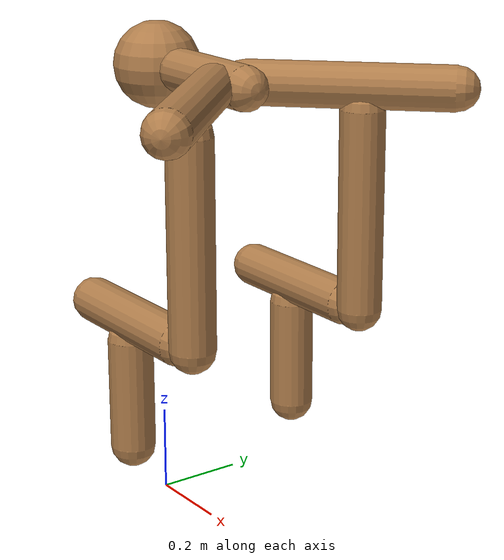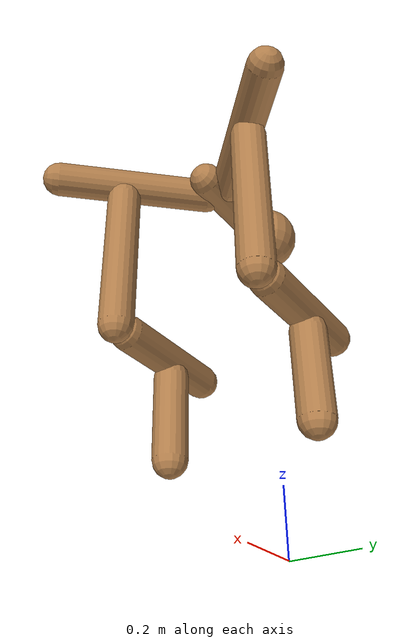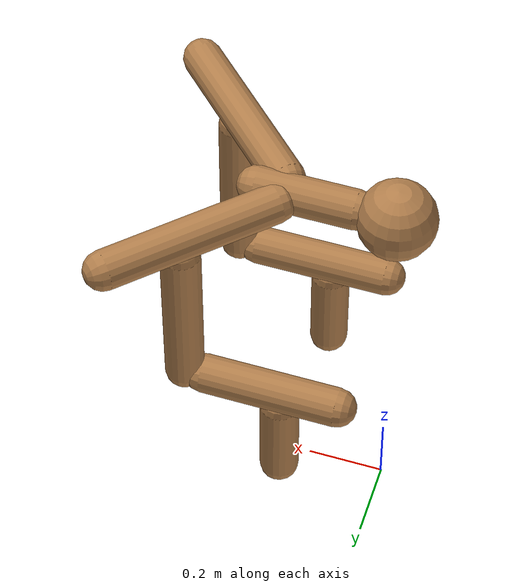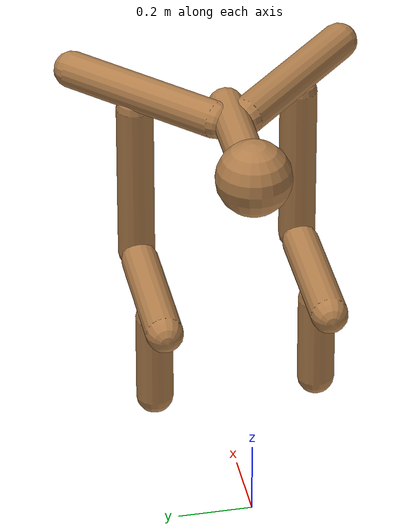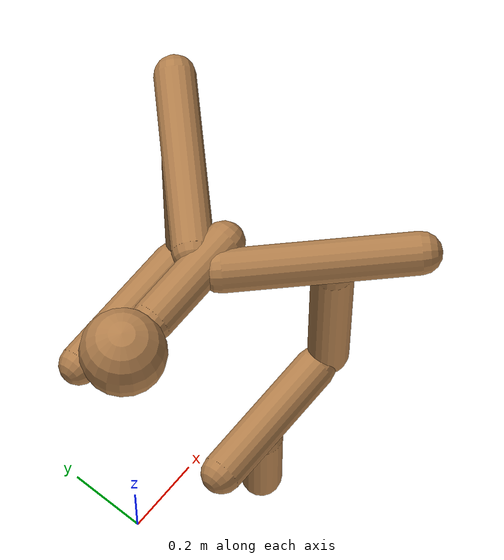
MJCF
<?xml version='1.0' encoding='UTF-8'?>
<!-- Universal Animal Template: unimal -->
<mujoco model="unimal">
  <compiler angle="degree"/>
  <size njmax="2000" nconmax="500"/>
  <option timestep=".005">
    <flag filterparent="disable"/>
  </option>
  <!-- Common defaults to make search space tractable -->
  <default>
    <!-- Define motor defaults -->
    <motor ctrlrange="-1 1" ctrllimited="true"/>
    <!-- Define joint defaults -->
    <default class="normal_joint">
      <joint type="hinge" damping="1" stiffness="1" armature="1" limited="true" range="-120 120" solimplimit="0 0.99 0.01"/>
    </default>
    <default class="walker_joint">
      <joint type="hinge" damping="0.2" stiffness="1" armature=".01" limited="true" range="-120 120" solimplimit="0 0.99 0.01"/>
    </default>
    <default class="stiff_joint">
      <joint type="hinge" damping="5" stiffness="10" armature=".01" limited="true" solimplimit="0 0.99 0.01"/>
    </default>
    <default class="free">
      <joint limited="false" damping="0" armature="0" stiffness="0"/>
    </default>
    <default class="growth_site">
      <site size="1e-6 1e-6 1e-6"/>
    </default>
    <default class="torso_growth_site">
      <site size="1e-6 1e-6 1e-6"/>
    </default>
    <default class="mirror_growth_site">
      <site size="1e-6 1e-6 1e-6"/>
    </default>
    <default class="btm_pos_site">
      <site size="1e-6 1e-6 1e-6"/>
    </default>
    <default class="box_face_site">
      <site size="1e-6 1e-6 1e-6"/>
    </default>
    <default class="imu_vel">
      <site type="box" size="0.05" rgba="1 0 0 0"/>
    </default>
    <default class="touch_site">
      <site group="3" rgba="0 0 1 .3"/>
    </default>
    <default class="food_site">
      <site material="food" size="0.15"/>
    </default>
    <!-- Define geom defaults -->
    <geom type="capsule" condim="3" friction="0.7 0.1 0.1" material="self"/>
  </default>
  <worldbody>
    <light diffuse="1 1 1" directional="true" exponent="1" pos="0 0 8" specular="0.1 0.1 0.1" dir="0 0 -1"/>
    <!-- Programatically generated xml goes here -->
    <body name="torso/0" pos="0 0 1.05">
      <joint name="root" type="free" class="free"/>
      <site name="root" class="imu_vel"/>
      <geom name="torso/0" type="sphere" size="0.1" condim="3" density="500"/>
      <camera name="side" pos="0 -7 2" xyaxes="1 0 0 0 1 2" mode="trackcom"/>
      <site name="torso/0" class="growth_site" pos="0 0 0"/>
      <site name="torso/btm_pos/0" class="btm_pos_site" pos="0 0 -0.1"/>
      <site name="torso/touch/0" class="touch_site" size="0.11"/>
      <site name="torso/horizontal_y/0" class="torso_growth_site" pos="-0.1 0 0"/>
      <body name="limb/18" pos="0.1 0.0 0.0">
        <joint name="limbx/18" type="hinge" class="normal_joint" range="-60 30" pos="-0.05 0.0 0.0" axis="0.0 0.0 1.0"/>
        <geom name="limb/18" type="capsule" fromto="0.0 0.0 0.0 0.25 0.0 0.0" size="0.05" density="500"/>
        <site name="limb/mid/18" class="growth_site" pos="0.15 0.0 0.0"/>
        <site name="limb/btm/18" class="growth_site" pos="0.25 0.0 0.0"/>
        <site name="limb/btm_pos/18" class="btm_pos_site" pos="0.25 0.0 0.0"/>
        <site name="limb/touch/18" class="touch_site" size="0.060000000000000005" fromto="0.0 0.0 0.0 0.25 0.0 0.0" type="capsule"/>
        <body name="limb/19" pos="0.19 0.04 0.0">
          <joint name="limbx/19" type="hinge" class="normal_joint" range="-60 0" pos="-0.04 -0.04 0.0" axis="0.5 -0.5 0.7071"/>
          <geom name="limb/19" type="capsule" fromto="0.0 0.0 0.0 0.32 0.32 0.0" size="0.05" density="500"/>
          <site name="limb/mid/19" class="mirror_growth_site" pos="0.18 0.18 0.0"/>
          <site name="limb/btm/19" class="mirror_growth_site" pos="0.32 0.32 0.0"/>
          <site name="limb/btm_pos/19" class="btm_pos_site" pos="0.32 0.32 0.0"/>
          <site name="limb/touch/19" class="touch_site" size="0.060000000000000005" fromto="0.0 0.0 0.0 0.32 0.32 0.0" type="capsule"/>
          <body name="limb/25" pos="0.18 0.18 -0.05">
            <joint name="limbx/25" type="hinge" class="normal_joint" range="0 60" pos="0.0 0.0 0.05" axis="1.0 0.0 0.0"/>
            <joint name="limby/25" type="hinge" class="normal_joint" range="-45 45" pos="0.0 0.0 0.05" axis="0.0 1.0 0.0"/>
            <geom name="limb/25" type="capsule" fromto="0.0 0.0 0.0 0.0 0.0 -0.45" size="0.05" density="500"/>
            <site name="limb/mid/25" class="mirror_growth_site" pos="0.0 0.0 -0.25"/>
            <site name="limb/btm/25" class="mirror_growth_site" pos="0.0 0.0 -0.45"/>
            <site name="limb/btm_pos/25" class="btm_pos_site" pos="0.0 0.0 -0.45"/>
            <site name="limb/touch/25" class="touch_site" size="0.060000000000000005" fromto="0.0 0.0 0.0 0.0 0.0 -0.45" type="capsule"/>
            <body name="limb/31" pos="-0.05 0.0 -0.45">
              <joint name="limbx/31" type="hinge" class="normal_joint" range="0 60" pos="0.05 0.0 0.0" axis="0.0 0.0 -1.0"/>
              <geom name="limb/31" type="capsule" fromto="0.0 0.0 0.0 -0.35 0.0 0.0" size="0.05" density="500"/>
              <site name="limb/mid/31" class="mirror_growth_site" pos="-0.2 0.0 0.0"/>
              <site name="limb/btm/31" class="mirror_growth_site" pos="-0.35 0.0 0.0"/>
              <site name="limb/btm_pos/31" class="btm_pos_site" pos="-0.4 0.0 0.0"/>
              <site name="limb/touch/31" class="touch_site" size="0.060000000000000005" fromto="0.0 0.0 0.0 -0.35 0.0 0.0" type="capsule"/>
              <body name="limb/33" pos="-0.2 0.0 -0.05">
                <joint name="limbx/33" type="hinge" class="normal_joint" range="-90 0" pos="0.0 0.0 0.05" axis="1.0 0.0 0.0"/>
                <geom name="limb/33" type="capsule" fromto="0.0 0.0 0.0 0.0 0.0 -0.25" size="0.05" density="500"/>
                <site name="limb/mid/33" class="mirror_growth_site" pos="0.0 0.0 -0.15"/>
                <site name="limb/btm/33" class="mirror_growth_site" pos="0.0 0.0 -0.25"/>
                <site name="limb/btm_pos/33" class="btm_pos_site" pos="0.0 0.0 -0.3"/>
                <site name="limb/touch/33" class="touch_site" size="0.060000000000000005" fromto="0.0 0.0 0.0 0.0 0.0 -0.25" type="capsule"/>
              </body>
            </body>
          </body>
        </body>
        <body name="limb/20" pos="0.19 -0.04 0.0">
          <joint name="limbx/20" type="hinge" class="normal_joint" range="-60 0" pos="-0.04 0.04 0.0" axis="0.5 0.5 0.7071"/>
          <geom name="limb/20" type="capsule" fromto="0.0 0.0 0.0 0.32 -0.32 0.0" size="0.05" density="500"/>
          <site name="limb/mid/20" class="mirror_growth_site" pos="0.18 -0.18 0.0"/>
          <site name="limb/btm/20" class="mirror_growth_site" pos="0.32 -0.32 0.0"/>
          <site name="limb/btm_pos/20" class="btm_pos_site" pos="0.32 -0.32 0.0"/>
          <site name="limb/touch/20" class="touch_site" size="0.060000000000000005" fromto="0.0 0.0 0.0 0.32 -0.32 0.0" type="capsule"/>
          <body name="limb/26" pos="0.18 -0.18 -0.05">
            <joint name="limbx/26" type="hinge" class="normal_joint" range="0 60" pos="0.0 0.0 0.05" axis="1.0 0.0 0.0"/>
            <joint name="limby/26" type="hinge" class="normal_joint" range="-45 45" pos="0.0 0.0 0.05" axis="0.0 1.0 0.0"/>
            <geom name="limb/26" type="capsule" fromto="0.0 0.0 0.0 0.0 0.0 -0.45" size="0.05" density="500"/>
            <site name="limb/mid/26" class="mirror_growth_site" pos="0.0 0.0 -0.25"/>
            <site name="limb/btm/26" class="mirror_growth_site" pos="0.0 0.0 -0.45"/>
            <site name="limb/btm_pos/26" class="btm_pos_site" pos="0.0 0.0 -0.45"/>
            <site name="limb/touch/26" class="touch_site" size="0.060000000000000005" fromto="0.0 0.0 0.0 0.0 0.0 -0.45" type="capsule"/>
            <body name="limb/32" pos="-0.05 0.0 -0.45">
              <joint name="limbx/32" type="hinge" class="normal_joint" range="0 60" pos="0.05 0.0 0.0" axis="0.0 0.0 -1.0"/>
              <geom name="limb/32" type="capsule" fromto="0.0 0.0 0.0 -0.35 0.0 0.0" size="0.05" density="500"/>
              <site name="limb/mid/32" class="mirror_growth_site" pos="-0.2 0.0 0.0"/>
              <site name="limb/btm/32" class="mirror_growth_site" pos="-0.35 0.0 0.0"/>
              <site name="limb/btm_pos/32" class="btm_pos_site" pos="-0.4 0.0 0.0"/>
              <site name="limb/touch/32" class="touch_site" size="0.060000000000000005" fromto="0.0 0.0 0.0 -0.35 0.0 0.0" type="capsule"/>
              <body name="limb/34" pos="-0.2 0.0 -0.05">
                <joint name="limbx/34" type="hinge" class="normal_joint" range="-90 0" pos="0.0 0.0 0.05" axis="1.0 0.0 0.0"/>
                <geom name="limb/34" type="capsule" fromto="0.0 0.0 0.0 0.0 0.0 -0.25" size="0.05" density="500"/>
                <site name="limb/mid/34" class="mirror_growth_site" pos="0.0 0.0 -0.15"/>
                <site name="limb/btm/34" class="mirror_growth_site" pos="0.0 0.0 -0.25"/>
                <site name="limb/btm_pos/34" class="btm_pos_site" pos="0.0 0.0 -0.3"/>
                <site name="limb/touch/34" class="touch_site" size="0.060000000000000005" fromto="0.0 0.0 0.0 0.0 0.0 -0.25" type="capsule"/>
              </body>
            </body>
          </body>
        </body>
      </body>
    </body>
  </worldbody>
  <actuator>
    <motor joint="limbx/18" gear="300" name="limbx/18"/>
    <motor joint="limbx/19" gear="300" name="limbx/19"/>
    <motor joint="limbx/25" gear="200" name="limbx/25"/>
    <motor joint="limby/25" gear="300" name="limby/25"/>
    <motor joint="limbx/31" gear="150" name="limbx/31"/>
    <motor joint="limbx/33" gear="250" name="limbx/33"/>
    <motor joint="limbx/20" gear="300" name="limbx/20"/>
    <motor joint="limbx/26" gear="200" name="limbx/26"/>
    <motor joint="limby/26" gear="300" name="limby/26"/>
    <motor joint="limbx/32" gear="150" name="limbx/32"/>
    <motor joint="limbx/34" gear="250" name="limbx/34"/>
  </actuator>
  <sensor>
    <accelerometer name="torso_accel" site="root"/>
    <gyro name="torso_gyro" site="root"/>
    <velocimeter name="torso_vel" site="root"/>
    <subtreeangmom name="unimal_am" body="torso/0"/>
    <touch name="torso/0" site="torso/touch/0"/>
    <touch name="limb/18" site="limb/touch/18"/>
    <touch name="limb/19" site="limb/touch/19"/>
    <touch name="limb/25" site="limb/touch/25"/>
    <touch name="limb/31" site="limb/touch/31"/>
    <touch name="limb/33" site="limb/touch/33"/>
    <touch name="limb/20" site="limb/touch/20"/>
    <touch name="limb/26" site="limb/touch/26"/>
    <touch name="limb/32" site="limb/touch/32"/>
    <touch name="limb/34" site="limb/touch/34"/>
  </sensor>
  <!-- Add hfield assets -->
  <asset/>
  <!-- List of contacts to exclude -->
  <contact>
    <exclude name="limb/19:limb/20" body1="limb/19" body2="limb/20"/>
  </contact>
  <!-- Define material, texture etc -->
  <asset>
    <material name="grid" texture="grid" texrepeat="1 1" texuniform="true" reflectance="0.1"/>
    <material name="hfield" texture="hfield" texrepeat="1 1" texuniform="true" reflectance="0.1"/>
    <material name="wall" texture="wall" texrepeat="1 1" texuniform="true" reflectance=".5"/>
    <material name="platform" texture="platform" texrepeat="1 1" texuniform="true" reflectance=".5"/>
    <material name="boundary" texture="boundary" texrepeat="1 1" texuniform="true" reflectance=".5"/>
    <material name="jump" texture="jump" texrepeat="1 1" texuniform="true" reflectance=".5"/>
    <material name="goal" rgba="1 0 0 1"/>
    <material name="food" rgba="0 0 1 1" emission="1"/>
    <material name="init_position" rgba="0 1 0 0.7"/>
    <material name="self" rgba=".7 .5 .3 1"/>
    <material name="self_invisible" rgba=".7 .5 .3 0"/>
    <material name="self_default" rgba=".7 .5 .3 1"/>
    <material name="self_highlight" rgba="0 .5 .3 1"/>
    <material name="effector" rgba=".7 .4 .2 1"/>
    <material name="effector_default" rgba=".7 .4 .2 1"/>
    <material name="effector_highlight" rgba="0 .5 .3 1"/>
    <material name="decoration" rgba=".3 .5 .7 1"/>
    <material name="eye" rgba="0 .2 1 1"/>
    <material name="target" rgba=".6 .3 .3 1"/>
    <material name="target_default" rgba=".6 .3 .3 1"/>
    <material name="target_highlight" rgba=".6 .3 .3 .4"/>
    <material name="site" rgba=".5 .5 .5 .3"/>
    <material name="ball" texture="ball"/>
  </asset>
  <asset>
    <texture name="grid" type="2d" builtin="checker" rgb1="0.4 0.4 0.4" rgb2="0.4 0.4 0.4" width="300" height="300" mark="edge" markrgb="0.2 0.2 0.2"/>
    <texture name="hfield" type="2d" builtin="checker" rgb1="0.4 0.4 0.4" rgb2="0.4 0.4 0.4" width="300" height="300" mark="edge" markrgb="0.2 0.2 0.2"/>
    <texture name="wall" type="2d" builtin="flat" rgb1="0.9 0.7 0" rgb2="0.9 0.7 0" width="300" height="300"/>
    <texture name="platform" type="2d" builtin="flat" rgb1="0.3 0 0.8" rgb2="0.3 0 0.8" width="300" height="300"/>
    <texture name="boundary" type="2d" builtin="flat" rgb1="0.3 0.3 0.3" rgb2="0.3 0.3 0.3" width="300" height="300"/>
    <texture name="jump" type="2d" builtin="flat" rgb1="0.3 0.3 0.3" rgb2="0.3 0.3 0.3" width="300" height="300"/>
    <texture name="skybox" type="skybox" builtin="gradient" rgb1="1 1 1" rgb2="0.6 0.6 0.6" width="800" height="800"/>
    <texture name="ball" builtin="checker" mark="cross" width="151" height="151" rgb1="0.1 0.1 0.1" rgb2="0.9 0.9 0.9" markrgb="1 1 1"/>
  </asset>
  <visual>
    <headlight ambient="0.6 0.6 0.6" diffuse="0.3 0.3 0.3" specular="0 0 0"/>
    <map znear=".01" shadowclip="0.5"/>
    <quality shadowsize="16384"/>
  </visual>
</mujoco>
